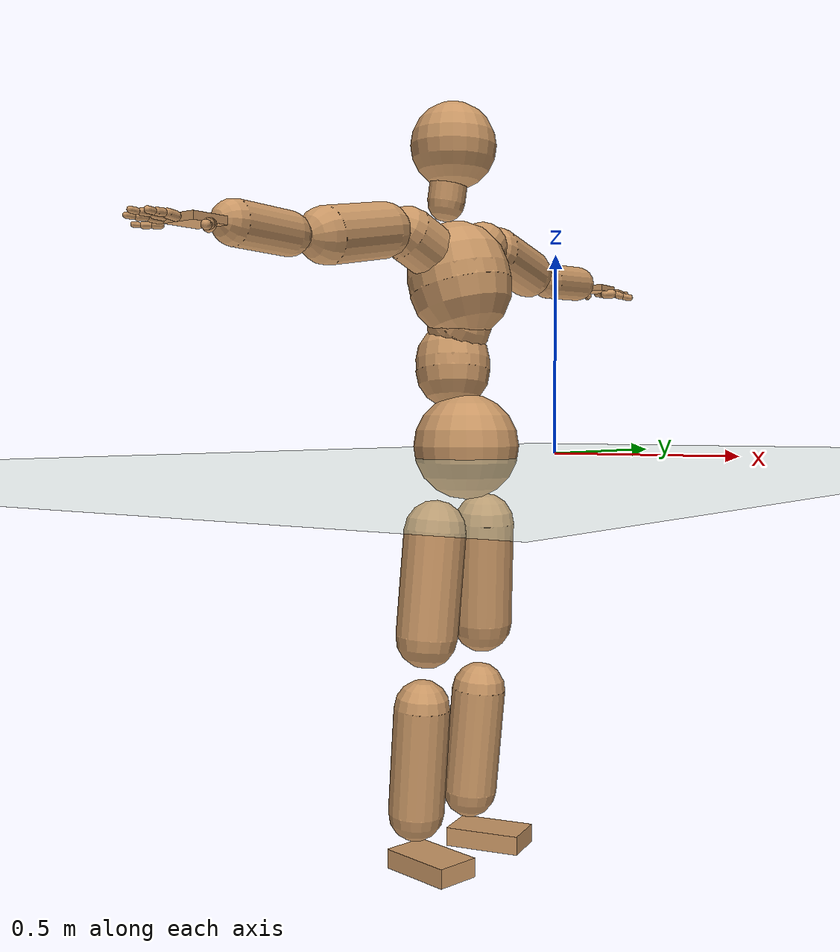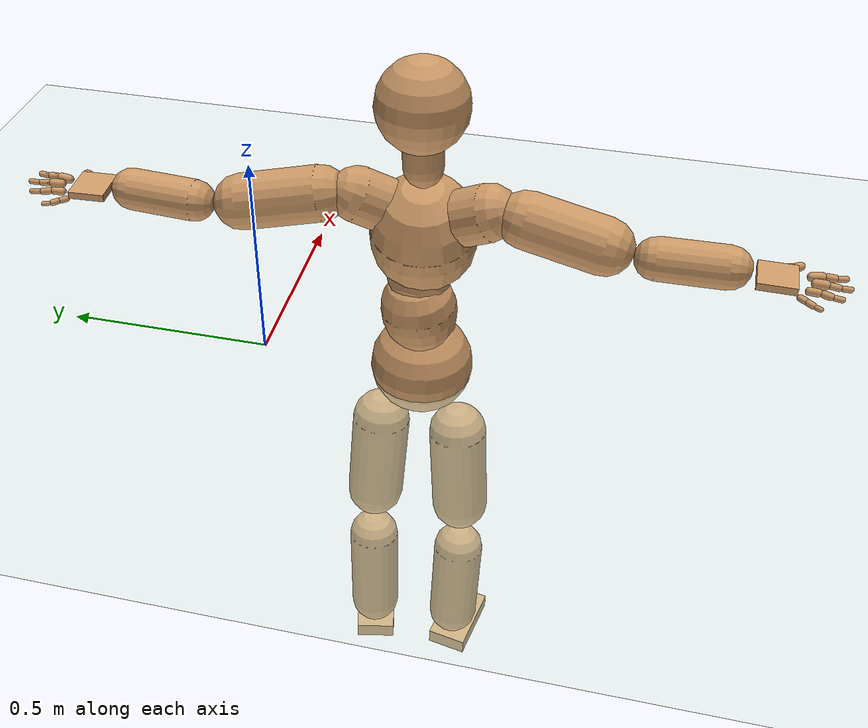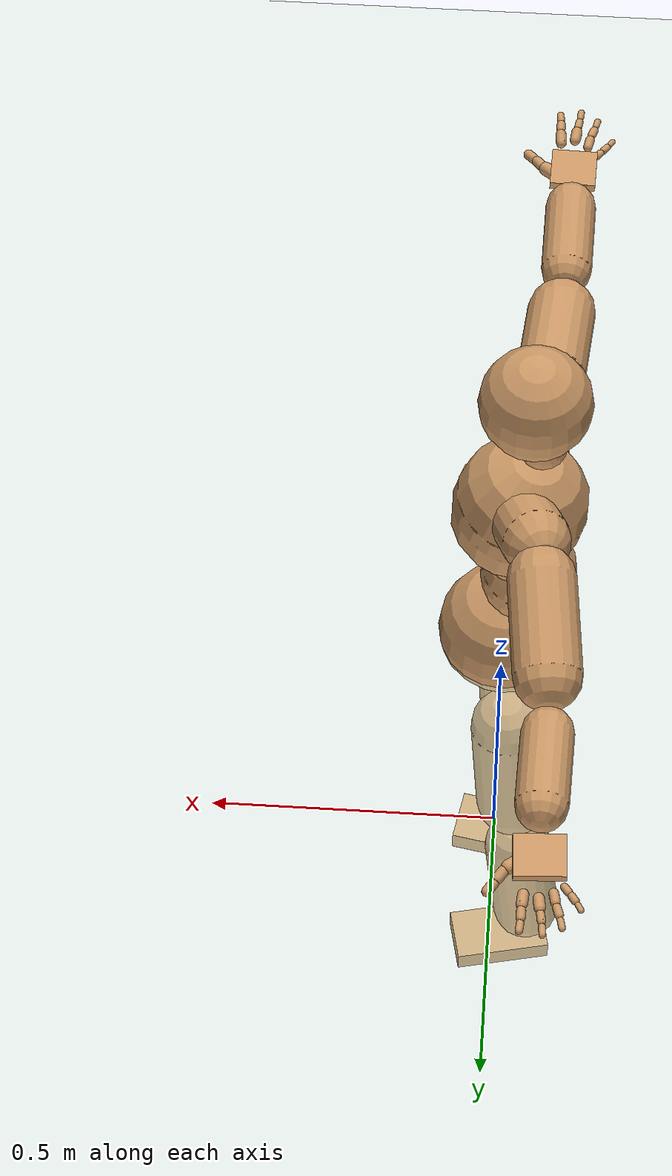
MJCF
<mujoco model="humanoid">
  <compiler coordinate="local" angle="radian"/>
  <default>
    <joint damping="0.0" armature="0.01" stiffness="0.0" limited="true"/>
    <geom conaffinity="1" condim="3" contype="7" margin="0.001" rgba="0.8 0.6 .4 1"/>
  </default>
  <asset>
    <texture type="skybox" builtin="gradient" rgb1=".4 .5 .6" rgb2="0 0 0" width="100" height="100"/>
    <texture builtin="flat" height="1278" mark="cross" markrgb="1 1 1" name="texgeom" random="0.01" rgb1="0.8 0.6 0.4" rgb2="0.8 0.6 0.4" type="cube" width="127"/>
    <texture builtin="checker" height="100" name="texplane" rgb1="0 0 0" rgb2="0.8 0.8 0.8" type="2d" width="100"/>
    <material name="MatPlane" reflectance="0.5" shininess="1" specular="1" texrepeat="60 60" texture="texplane"/>
    <material name="geom" texture="texgeom" texuniform="true"/>
  </asset>
  <worldbody>
    <light cutoff="100" diffuse="1 1 1" dir="-0 0 -1.3" directional="true" exponent="1" pos="0 0 1.3" specular=".1 .1 .1"/>
    <geom conaffinity="1" condim="3" name="floor" pos="0 0 0" rgba="0.8 0.9 0.8 1" size="100 100 .2" type="plane" material="MatPlane"/>
    <body name="Pelvis" pos="0.0009 -0.3911 0.0245">
      <freejoint name="Pelvis"/>
      <geom type="sphere" contype="1" conaffinity="1" density="500" size="0.1206" pos="0.0000 0.0000 0.0000" name="Pelvis"/>
      <body name="L_Hip" pos="-0.0115 0.0913 -0.1022">
        <joint name="L_Hip_x" type="hinge" pos="0 0 0" axis="1 0 0" stiffness="800" damping="80" armature="0.02" range="-180.0000 180.0000"/>
        <joint name="L_Hip_y" type="hinge" pos="0 0 0" axis="0 1 0" stiffness="800" damping="80" armature="0.02" range="-180.0000 180.0000"/>
        <joint name="L_Hip_z" type="hinge" pos="0 0 0" axis="0 0 1" stiffness="800" damping="80" armature="0.02" range="-180.0000 180.0000"/>
        <geom type="capsule" contype="1" conaffinity="1" density="500" fromto="-0.0052 0.0046 -0.0803 -0.0209 0.0185 -0.3211" size="0.0702" name="L_Hip"/>
        <body name="L_Knee" pos="-0.0261 0.0232 -0.4014">
          <joint name="L_Knee_x" type="hinge" pos="0 0 0" axis="1 0 0" stiffness="800" damping="80" armature="0.02" range="-180.0000 180.0000"/>
          <joint name="L_Knee_y" type="hinge" pos="0 0 0" axis="0 1 0" stiffness="800" damping="80" armature="0.02" range="-180.0000 180.0000"/>
          <joint name="L_Knee_z" type="hinge" pos="0 0 0" axis="0 0 1" stiffness="800" damping="80" armature="0.02" range="-180.0000 180.0000"/>
          <geom type="capsule" contype="1" conaffinity="1" density="500" fromto="-0.0073 -0.0021 -0.0830 -0.0291 -0.0083 -0.3321" size="0.0637" name="L_Knee"/>
          <body name="L_Ankle" pos="-0.0364 -0.0104 -0.4151">
            <joint name="L_Ankle_x" type="hinge" pos="0 0 0" axis="1 0 0" stiffness="800" damping="80" armature="0.02" range="-180.0000 180.0000"/>
            <joint name="L_Ankle_y" type="hinge" pos="0 0 0" axis="0 1 0" stiffness="800" damping="80" armature="0.02" range="-180.0000 180.0000"/>
            <joint name="L_Ankle_z" type="hinge" pos="0 0 0" axis="0 0 1" stiffness="800" damping="80" armature="0.02" range="-180.0000 180.0000"/>
            <geom type="box" contype="1" conaffinity="1" density="500" pos="0.0575 0.0125 -0.0217" size="0.0903 0.0509 0.0217" quat="0.9943 0.0000 0.0000 0.1064" name="L_Ankle"/>
            <body name="L_Toe" pos="0.1151 0.0249 -0.0434">
              <joint name="L_Toe_x" type="hinge" pos="0 0 0" axis="1 0 0" stiffness="500" damping="50" armature="0.02" range="-180.0000 180.0000"/>
              <joint name="L_Toe_y" type="hinge" pos="0 0 0" axis="0 1 0" stiffness="500" damping="50" armature="0.02" range="-180.0000 180.0000"/>
              <joint name="L_Toe_z" type="hinge" pos="0 0 0" axis="0 0 1" stiffness="500" damping="50" armature="0.02" range="-180.0000 180.0000"/>
              <geom type="box" contype="1" conaffinity="1" density="500" pos="0.0000 0.0000 0.0216" size="0.001 0.0024 0.0011" quat="0.9936 0.0000 0.0000 0.1128" name="L_Toe"/>
            </body>
          </body>
        </body>
      </body>
      <body name="R_Hip" pos="-0.0126 -0.0913 -0.1086">
        <joint name="R_Hip_x" type="hinge" pos="0 0 0" axis="1 0 0" stiffness="800" damping="80" armature="0.02" range="-180.0000 180.0000"/>
        <joint name="R_Hip_y" type="hinge" pos="0 0 0" axis="0 1 0" stiffness="800" damping="80" armature="0.02" range="-180.0000 180.0000"/>
        <joint name="R_Hip_z" type="hinge" pos="0 0 0" axis="0 0 1" stiffness="800" damping="80" armature="0.02" range="-180.0000 180.0000"/>
        <geom type="capsule" contype="1" conaffinity="1" density="500" fromto="-0.0038 -0.0055 -0.0795 -0.0153 -0.0220 -0.3180" size="0.07" name="R_Hip"/>
        <body name="R_Knee" pos="-0.0192 -0.0275 -0.3975">
          <joint name="R_Knee_x" type="hinge" pos="0 0 0" axis="1 0 0" stiffness="800" damping="80" armature="0.02" range="-180.0000 180.0000"/>
          <joint name="R_Knee_y" type="hinge" pos="0 0 0" axis="0 1 0" stiffness="800" damping="80" armature="0.02" range="-180.0000 180.0000"/>
          <joint name="R_Knee_z" type="hinge" pos="0 0 0" axis="0 0 1" stiffness="800" damping="80" armature="0.02" range="-180.0000 180.0000"/>
          <geom type="capsule" contype="1" conaffinity="1" density="500" fromto="-0.0067 0.0010 -0.0812 -0.0268 0.0041 -0.3247" size="0.0637" name="R_Knee"/>
          <body name="R_Ankle" pos="-0.0334 0.0051 -0.4059">
            <joint name="R_Ankle_x" type="hinge" pos="0 0 0" axis="1 0 0" stiffness="800" damping="80" armature="0.02" range="-180.0000 180.0000"/>
            <joint name="R_Ankle_y" type="hinge" pos="0 0 0" axis="0 1 0" stiffness="800" damping="80" armature="0.02" range="-180.0000 180.0000"/>
            <joint name="R_Ankle_z" type="hinge" pos="0 0 0" axis="0 0 1" stiffness="800" damping="80" armature="0.02" range="-180.0000 180.0000"/>
            <geom type="box" contype="1" conaffinity="1" density="500" pos="0.0546 -0.0101 -0.0233" size="0.0903 0.0509 0.0217" quat="0.9958 0.0000 0.0000 -0.0918" name="R_Ankle"/>
            <body name="R_Toe" pos="0.1091 -0.0203 -0.0466">
              <joint name="R_Toe_x" type="hinge" pos="0 0 0" axis="1 0 0" stiffness="500" damping="50" armature="0.02" range="-180.0000 180.0000"/>
              <joint name="R_Toe_y" type="hinge" pos="0 0 0" axis="0 1 0" stiffness="500" damping="50" armature="0.02" range="-180.0000 180.0000"/>
              <joint name="R_Toe_z" type="hinge" pos="0 0 0" axis="0 0 1" stiffness="500" damping="50" armature="0.02" range="-180.0000 180.0000"/>
              <geom type="box" contype="1" conaffinity="1" density="500" pos="0.0000 0.0000 0.0232" size="0.001 0.0024 0.0011" quat="0.9967 0.0000 0.0000 -0.0815" name="R_Toe"/>
            </body>
          </body>
        </body>
      </body>
      <body name="Torso" pos="-0.0316 -0.0068 0.1215">
        <joint name="Torso_x" type="hinge" pos="0 0 0" axis="1 0 0" stiffness="1000" damping="100" armature="0.02" range="-180.0000 180.0000"/>
        <joint name="Torso_y" type="hinge" pos="0 0 0" axis="0 1 0" stiffness="1000" damping="100" armature="0.02" range="-180.0000 180.0000"/>
        <joint name="Torso_z" type="hinge" pos="0 0 0" axis="0 0 1" stiffness="1000" damping="100" armature="0.02" range="-180.0000 180.0000"/>
        <geom type="capsule" contype="1" conaffinity="1" density="500" fromto="-0.0079 0.0090 0.0761 -0.0053 0.0060 0.0507" size="0.0854" name="Torso"/>
        <body name="Spine" pos="-0.0131 0.015 0.1268">
          <joint name="Spine_x" type="hinge" pos="0 0 0" axis="1 0 0" stiffness="1000" damping="100" armature="0.02" range="-180.0000 180.0000"/>
          <joint name="Spine_y" type="hinge" pos="0 0 0" axis="0 1 0" stiffness="1000" damping="100" armature="0.02" range="-180.0000 180.0000"/>
          <joint name="Spine_z" type="hinge" pos="0 0 0" axis="0 0 1" stiffness="1000" damping="100" armature="0.02" range="-180.0000 180.0000"/>
          <geom type="capsule" contype="1" conaffinity="1" density="500" fromto="0.0281 -0.0054 0.0286 0.0188 -0.0036 0.0191" size="0.0712" name="Spine"/>
          <body name="Chest" pos="0.0469 -0.009 0.0477">
            <joint name="Chest_x" type="hinge" pos="0 0 0" axis="1 0 0" stiffness="1000" damping="100" armature="0.02" range="-180.0000 180.0000"/>
            <joint name="Chest_y" type="hinge" pos="0 0 0" axis="0 1 0" stiffness="1000" damping="100" armature="0.02" range="-180.0000 180.0000"/>
            <joint name="Chest_z" type="hinge" pos="0 0 0" axis="0 0 1" stiffness="1000" damping="100" armature="0.02" range="-180.0000 180.0000"/>
            <geom type="capsule" contype="1" conaffinity="1" density="500" fromto="-0.0232 -0.0019 0.0978 -0.0155 -0.0012 0.0652" size="0.1177" name="Chest"/>
            <body name="Neck" pos="-0.0579 -0.0066 0.2282">
              <joint name="Neck_x" type="hinge" pos="0 0 0" axis="1 0 0" stiffness="500" damping="50" armature="0.02" range="-180.0000 180.0000"/>
              <joint name="Neck_y" type="hinge" pos="0 0 0" axis="0 1 0" stiffness="500" damping="50" armature="0.02" range="-180.0000 180.0000"/>
              <joint name="Neck_z" type="hinge" pos="0 0 0" axis="0 0 1" stiffness="500" damping="50" armature="0.02" range="-180.0000 180.0000"/>
              <geom type="capsule" contype="1" conaffinity="1" density="500" fromto="0.0040 0.0019 0.0317 0.0159 0.0075 0.1269" size="0.043" name="Neck"/>
              <body name="Head" pos="0.0198 0.0093 0.1587">
                <joint name="Head_x" type="hinge" pos="0 0 0" axis="1 0 0" stiffness="500" damping="50" armature="0.02" range="-180.0000 180.0000"/>
                <joint name="Head_y" type="hinge" pos="0 0 0" axis="0 1 0" stiffness="500" damping="50" armature="0.02" range="-180.0000 180.0000"/>
                <joint name="Head_z" type="hinge" pos="0 0 0" axis="0 0 1" stiffness="500" damping="50" armature="0.02" range="-180.0000 180.0000"/>
                <geom type="sphere" contype="1" conaffinity="1" density="500" size="0.0980" pos="0.0000 0.0000 0.0000" name="Head"/>
              </body>
            </body>
            <body name="L_Thorax" pos="-0.0252 0.0587 0.133">
              <joint name="L_Thorax_x" type="hinge" pos="0 0 0" axis="1 0 0" stiffness="500" damping="50" armature="0.02" range="-180.0000 180.0000"/>
              <joint name="L_Thorax_y" type="hinge" pos="0 0 0" axis="0 1 0" stiffness="500" damping="50" armature="0.02" range="-180.0000 180.0000"/>
              <joint name="L_Thorax_z" type="hinge" pos="0 0 0" axis="0 0 1" stiffness="500" damping="50" armature="0.02" range="-180.0000 180.0000"/>
              <geom type="capsule" contype="1" conaffinity="1" density="500" fromto="-0.0065 0.0192 0.0103 -0.0259 0.0768 0.0413" size="0.0601" name="L_Thorax"/>
              <body name="L_Shoulder" pos="-0.0324 0.096 0.0516">
                <joint name="L_Shoulder_x" type="hinge" pos="0 0 0" axis="1 0 0" stiffness="500" damping="50" armature="0.02" range="-180.0000 180.0000"/>
                <joint name="L_Shoulder_y" type="hinge" pos="0 0 0" axis="0 1 0" stiffness="500" damping="50" armature="0.02" range="-180.0000 180.0000"/>
                <joint name="L_Shoulder_z" type="hinge" pos="0 0 0" axis="0 0 1" stiffness="500" damping="50" armature="0.02" range="-180.0000 180.0000"/>
                <geom type="capsule" contype="1" conaffinity="1" density="500" fromto="-0.0059 0.0572 -0.0114 -0.0238 0.2287 -0.0457" size="0.0602" name="L_Shoulder"/>
                <body name="L_Elbow" pos="-0.0297 0.2859 -0.0571">
                  <joint name="L_Elbow_x" type="hinge" pos="0 0 0" axis="1 0 0" stiffness="500" damping="50" armature="0.02" range="-720.0000 720.0000"/>
                  <joint name="L_Elbow_y" type="hinge" pos="0 0 0" axis="0 1 0" stiffness="500" damping="50" armature="0.02" range="-720.0000 720.0000"/>
                  <joint name="L_Elbow_z" type="hinge" pos="0 0 0" axis="0 0 1" stiffness="500" damping="50" armature="0.02" range="-720.0000 720.0000"/>
                  <geom type="capsule" contype="1" conaffinity="1" density="500" fromto="0.0013 0.0478 0.0019 0.0051 0.1912 0.0075" size="0.0452" name="L_Elbow"/>
                  <body name="L_Wrist" pos="0.0064 0.239 0.0094">
                    <joint name="L_Wrist_x" type="hinge" pos="0 0 0" axis="1 0 0" stiffness="300" damping="30" armature="0.02" range="-180.0000 180.0000"/>
                    <joint name="L_Wrist_y" type="hinge" pos="0 0 0" axis="0 1 0" stiffness="300" damping="30" armature="0.02" range="-180.0000 180.0000"/>
                    <joint name="L_Wrist_z" type="hinge" pos="0 0 0" axis="0 0 1" stiffness="300" damping="30" armature="0.02" range="-180.0000 180.0000"/>
                    <geom type="box" contype="1" conaffinity="1" density="500" pos="-0.0021 0.0458 -0.0085" size="0.0399 0.0441 0.0078" quat="0.7234 0.0000 0.0000 -0.6904" name="L_Wrist"/>
                    <body name="L_Index1" pos="0.0212 0.1075 -0.0144">
                      <joint name="L_Index1_x" type="hinge" pos="0 0 0" axis="1 0 0" stiffness="100" damping="10" armature="0.02" range="-180.0000 180.0000"/>
                      <joint name="L_Index1_y" type="hinge" pos="0 0 0" axis="0 1 0" stiffness="100" damping="10" armature="0.02" range="-180.0000 180.0000"/>
                      <joint name="L_Index1_z" type="hinge" pos="0 0 0" axis="0 0 1" stiffness="100" damping="10" armature="0.02" range="-180.0000 180.0000"/>
                      <geom type="capsule" contype="1" conaffinity="1" density="500" fromto="0.0005 0.0064 0.0007 0.0020 0.0257 0.0026" size="0.0095" name="L_Index1"/>
                      <body name="L_Index2" pos="0.0025 0.0321 0.0033">
                        <joint name="L_Index2_x" type="hinge" pos="0 0 0" axis="1 0 0" stiffness="100" damping="10" armature="0.02" range="-180.0000 180.0000"/>
                        <joint name="L_Index2_y" type="hinge" pos="0 0 0" axis="0 1 0" stiffness="100" damping="10" armature="0.02" range="-180.0000 180.0000"/>
                        <joint name="L_Index2_z" type="hinge" pos="0 0 0" axis="0 0 1" stiffness="100" damping="10" armature="0.02" range="-180.0000 180.0000"/>
                        <geom type="capsule" contype="1" conaffinity="1" density="500" fromto="0.0000 0.0045 -0.0003 0.0002 0.0181 -0.0010" size="0.0078" name="L_Index2"/>
                        <body name="L_Index3" pos="0.0002 0.0226 -0.0013">
                          <joint name="L_Index3_x" type="hinge" pos="0 0 0" axis="1 0 0" stiffness="100" damping="10" armature="0.02" range="-180.0000 180.0000"/>
                          <joint name="L_Index3_y" type="hinge" pos="0 0 0" axis="0 1 0" stiffness="100" damping="10" armature="0.02" range="-180.0000 180.0000"/>
                          <joint name="L_Index3_z" type="hinge" pos="0 0 0" axis="0 0 1" stiffness="100" damping="10" armature="0.02" range="-180.0000 180.0000"/>
                          <geom type="capsule" contype="1" conaffinity="1" density="500" fromto="0.0004 0.0049 0.0001 0.0018 0.0197 0.0006" size="0.0064" name="L_Index3"/>
                        </body>
                      </body>
                    </body>
                    <body name="L_Middle1" pos="-0.0027 0.1147 -0.0116">
                      <joint name="L_Middle1_x" type="hinge" pos="0 0 0" axis="1 0 0" stiffness="100" damping="10" armature="0.02" range="-180.0000 180.0000"/>
                      <joint name="L_Middle1_y" type="hinge" pos="0 0 0" axis="0 1 0" stiffness="100" damping="10" armature="0.02" range="-180.0000 180.0000"/>
                      <joint name="L_Middle1_z" type="hinge" pos="0 0 0" axis="0 0 1" stiffness="100" damping="10" armature="0.02" range="-180.0000 180.0000"/>
                      <geom type="capsule" contype="1" conaffinity="1" density="500" fromto="-0.0008 0.0060 0.0004 -0.0032 0.0241 0.0015" size="0.0097" name="L_Middle1"/>
                      <body name="L_Middle2" pos="-0.004 0.0302 0.0019">
                        <joint name="L_Middle2_x" type="hinge" pos="0 0 0" axis="1 0 0" stiffness="100" damping="10" armature="0.02" range="-180.0000 180.0000"/>
                        <joint name="L_Middle2_y" type="hinge" pos="0 0 0" axis="0 1 0" stiffness="100" damping="10" armature="0.02" range="-180.0000 180.0000"/>
                        <joint name="L_Middle2_z" type="hinge" pos="0 0 0" axis="0 0 1" stiffness="100" damping="10" armature="0.02" range="-180.0000 180.0000"/>
                        <geom type="capsule" contype="1" conaffinity="1" density="500" fromto="-0.0008 0.0046 -0.0001 -0.0031 0.0186 -0.0005" size="0.007" name="L_Middle2"/>
                        <body name="L_Middle3" pos="-0.0039 0.0232 -0.0006">
                          <joint name="L_Middle3_x" type="hinge" pos="0 0 0" axis="1 0 0" stiffness="100" damping="10" armature="0.02" range="-180.0000 180.0000"/>
                          <joint name="L_Middle3_y" type="hinge" pos="0 0 0" axis="0 1 0" stiffness="100" damping="10" armature="0.02" range="-180.0000 180.0000"/>
                          <joint name="L_Middle3_z" type="hinge" pos="0 0 0" axis="0 0 1" stiffness="100" damping="10" armature="0.02" range="-180.0000 180.0000"/>
                          <geom type="capsule" contype="1" conaffinity="1" density="500" fromto="-0.0004 0.0050 0.0003 -0.0015 0.0202 0.0011" size="0.0059" name="L_Middle3"/>
                        </body>
                      </body>
                    </body>
                    <body name="L_Pinky1" pos="-0.042 0.0888 -0.0209">
                      <joint name="L_Pinky1_x" type="hinge" pos="0 0 0" axis="1 0 0" stiffness="100" damping="10" armature="0.02" range="-180.0000 180.0000"/>
                      <joint name="L_Pinky1_y" type="hinge" pos="0 0 0" axis="0 1 0" stiffness="100" damping="10" armature="0.02" range="-180.0000 180.0000"/>
                      <joint name="L_Pinky1_z" type="hinge" pos="0 0 0" axis="0 0 1" stiffness="100" damping="10" armature="0.02" range="-180.0000 180.0000"/>
                      <geom type="capsule" contype="1" conaffinity="1" density="500" fromto="-0.0024 0.0030 -0.0001 -0.0095 0.0120 -0.0004" size="0.0068" name="L_Pinky1"/>
                      <body name="L_Pinky2" pos="-0.0119 0.015 -0.0006">
                        <joint name="L_Pinky2_x" type="hinge" pos="0 0 0" axis="1 0 0" stiffness="100" damping="10" armature="0.02" range="-180.0000 180.0000"/>
                        <joint name="L_Pinky2_y" type="hinge" pos="0 0 0" axis="0 1 0" stiffness="100" damping="10" armature="0.02" range="-180.0000 180.0000"/>
                        <joint name="L_Pinky2_z" type="hinge" pos="0 0 0" axis="0 0 1" stiffness="100" damping="10" armature="0.02" range="-180.0000 180.0000"/>
                        <geom type="capsule" contype="1" conaffinity="1" density="500" fromto="-0.0023 0.0030 -0.0002 -0.0091 0.0121 -0.0009" size="0.0066" name="L_Pinky2"/>
                        <body name="L_Pinky3" pos="-0.0114 0.0152 -0.0011">
                          <joint name="L_Pinky3_x" type="hinge" pos="0 0 0" axis="1 0 0" stiffness="100" damping="10" armature="0.02" range="-180.0000 180.0000"/>
                          <joint name="L_Pinky3_y" type="hinge" pos="0 0 0" axis="0 1 0" stiffness="100" damping="10" armature="0.02" range="-180.0000 180.0000"/>
                          <joint name="L_Pinky3_z" type="hinge" pos="0 0 0" axis="0 0 1" stiffness="100" damping="10" armature="0.02" range="-180.0000 180.0000"/>
                          <geom type="capsule" contype="1" conaffinity="1" density="500" fromto="-0.0019 0.0034 0.0002 -0.0075 0.0137 0.0007" size="0.005" name="L_Pinky3"/>
                        </body>
                      </body>
                    </body>
                    <body name="L_Ring1" pos="-0.0263 0.1024 -0.015">
                      <joint name="L_Ring1_x" type="hinge" pos="0 0 0" axis="1 0 0" stiffness="100" damping="10" armature="0.02" range="-180.0000 180.0000"/>
                      <joint name="L_Ring1_y" type="hinge" pos="0 0 0" axis="0 1 0" stiffness="100" damping="10" armature="0.02" range="-180.0000 180.0000"/>
                      <joint name="L_Ring1_z" type="hinge" pos="0 0 0" axis="0 0 1" stiffness="100" damping="10" armature="0.02" range="-180.0000 180.0000"/>
                      <geom type="capsule" contype="1" conaffinity="1" density="500" fromto="-0.0011 0.0055 0.0004 -0.0044 0.0222 0.0016" size="0.0083" name="L_Ring1"/>
                      <body name="L_Ring2" pos="-0.0056 0.0277 0.002">
                        <joint name="L_Ring2_x" type="hinge" pos="0 0 0" axis="1 0 0" stiffness="100" damping="10" armature="0.02" range="-180.0000 180.0000"/>
                        <joint name="L_Ring2_y" type="hinge" pos="0 0 0" axis="0 1 0" stiffness="100" damping="10" armature="0.02" range="-180.0000 180.0000"/>
                        <joint name="L_Ring2_z" type="hinge" pos="0 0 0" axis="0 0 1" stiffness="100" damping="10" armature="0.02" range="-180.0000 180.0000"/>
                        <geom type="capsule" contype="1" conaffinity="1" density="500" fromto="-0.0014 0.0045 -0.0002 -0.0058 0.0180 -0.0009" size="0.0075" name="L_Ring2"/>
                        <body name="L_Ring3" pos="-0.0072 0.0225 -0.0012">
                          <joint name="L_Ring3_x" type="hinge" pos="0 0 0" axis="1 0 0" stiffness="100" damping="10" armature="0.02" range="-180.0000 180.0000"/>
                          <joint name="L_Ring3_y" type="hinge" pos="0 0 0" axis="0 1 0" stiffness="100" damping="10" armature="0.02" range="-180.0000 180.0000"/>
                          <joint name="L_Ring3_z" type="hinge" pos="0 0 0" axis="0 0 1" stiffness="100" damping="10" armature="0.02" range="-180.0000 180.0000"/>
                          <geom type="capsule" contype="1" conaffinity="1" density="500" fromto="-0.0010 0.0049 0.0002 -0.0042 0.0196 0.0007" size="0.0057" name="L_Ring3"/>
                        </body>
                      </body>
                    </body>
                    <body name="L_Thumb1" pos="0.0284 0.0448 -0.0235">
                      <joint name="L_Thumb1_x" type="hinge" pos="0 0 0" axis="1 0 0" stiffness="100" damping="10" armature="0.02" range="-180.0000 180.0000"/>
                      <joint name="L_Thumb1_y" type="hinge" pos="0 0 0" axis="0 1 0" stiffness="100" damping="10" armature="0.02" range="-180.0000 180.0000"/>
                      <joint name="L_Thumb1_z" type="hinge" pos="0 0 0" axis="0 0 1" stiffness="100" damping="10" armature="0.02" range="-180.0000 180.0000"/>
                      <geom type="capsule" contype="1" conaffinity="1" density="500" fromto="0.0049 0.0035 0.0002 0.0195 0.0140 0.0007" size="0.0123" name="L_Thumb1"/>
                      <body name="L_Thumb2" pos="0.0243 0.0175 0.0008">
                        <joint name="L_Thumb2_x" type="hinge" pos="0 0 0" axis="1 0 0" stiffness="100" damping="10" armature="0.02" range="-180.0000 180.0000"/>
                        <joint name="L_Thumb2_y" type="hinge" pos="0 0 0" axis="0 1 0" stiffness="100" damping="10" armature="0.02" range="-180.0000 180.0000"/>
                        <joint name="L_Thumb2_z" type="hinge" pos="0 0 0" axis="0 0 1" stiffness="100" damping="10" armature="0.02" range="-180.0000 180.0000"/>
                        <geom type="capsule" contype="1" conaffinity="1" density="500" fromto="0.0029 0.0042 -0.0012 0.0117 0.0166 -0.0048" size="0.0097" name="L_Thumb2"/>
                        <body name="L_Thumb3" pos="0.0146 0.0208 -0.006">
                          <joint name="L_Thumb3_x" type="hinge" pos="0 0 0" axis="1 0 0" stiffness="100" damping="10" armature="0.02" range="-180.0000 180.0000"/>
                          <joint name="L_Thumb3_y" type="hinge" pos="0 0 0" axis="0 1 0" stiffness="100" damping="10" armature="0.02" range="-180.0000 180.0000"/>
                          <joint name="L_Thumb3_z" type="hinge" pos="0 0 0" axis="0 0 1" stiffness="100" damping="10" armature="0.02" range="-180.0000 180.0000"/>
                          <geom type="capsule" contype="1" conaffinity="1" density="500" fromto="0.0033 0.0046 -0.0008 0.0133 0.0182 -0.0032" size="0.009" name="L_Thumb3"/>
                        </body>
                      </body>
                    </body>
                  </body>
                </body>
              </body>
            </body>
            <body name="R_Thorax" pos="-0.033 -0.0614 0.128">
              <joint name="R_Thorax_x" type="hinge" pos="0 0 0" axis="1 0 0" stiffness="500" damping="50" armature="0.02" range="-180.0000 180.0000"/>
              <joint name="R_Thorax_y" type="hinge" pos="0 0 0" axis="0 1 0" stiffness="500" damping="50" armature="0.02" range="-180.0000 180.0000"/>
              <joint name="R_Thorax_z" type="hinge" pos="0 0 0" axis="0 0 1" stiffness="500" damping="50" armature="0.02" range="-180.0000 180.0000"/>
              <geom type="capsule" contype="1" conaffinity="1" density="500" fromto="-0.0048 -0.0209 0.0107 -0.0191 -0.0837 0.0427" size="0.0613" name="R_Thorax"/>
              <body name="R_Shoulder" pos="-0.0238 -0.1046 0.0533">
                <joint name="R_Shoulder_x" type="hinge" pos="0 0 0" axis="1 0 0" stiffness="500" damping="50" armature="0.02" range="-180.0000 180.0000"/>
                <joint name="R_Shoulder_y" type="hinge" pos="0 0 0" axis="0 1 0" stiffness="500" damping="50" armature="0.02" range="-180.0000 180.0000"/>
                <joint name="R_Shoulder_z" type="hinge" pos="0 0 0" axis="0 0 1" stiffness="500" damping="50" armature="0.02" range="-180.0000 180.0000"/>
                <geom type="capsule" contype="1" conaffinity="1" density="500" fromto="-0.0045 -0.0552 -0.0101 -0.0178 -0.2210 -0.0405" size="0.0607" name="R_Shoulder"/>
                <body name="R_Elbow" pos="-0.0223 -0.2762 -0.0506">
                  <joint name="R_Elbow_x" type="hinge" pos="0 0 0" axis="1 0 0" stiffness="500" damping="50" armature="0.02" range="-720.0000 720.0000"/>
                  <joint name="R_Elbow_y" type="hinge" pos="0 0 0" axis="0 1 0" stiffness="500" damping="50" armature="0.02" range="-720.0000 720.0000"/>
                  <joint name="R_Elbow_z" type="hinge" pos="0 0 0" axis="0 0 1" stiffness="500" damping="50" armature="0.02" range="-720.0000 720.0000"/>
                  <geom type="capsule" contype="1" conaffinity="1" density="500" fromto="-0.0007 -0.0478 0.0010 -0.0030 -0.1913 0.0042" size="0.0453" name="R_Elbow"/>
                  <body name="R_Wrist" pos="-0.0037 -0.2391 0.0052">
                    <joint name="R_Wrist_x" type="hinge" pos="0 0 0" axis="1 0 0" stiffness="300" damping="30" armature="0.02" range="-180.0000 180.0000"/>
                    <joint name="R_Wrist_y" type="hinge" pos="0 0 0" axis="0 1 0" stiffness="300" damping="30" armature="0.02" range="-180.0000 180.0000"/>
                    <joint name="R_Wrist_z" type="hinge" pos="0 0 0" axis="0 0 1" stiffness="300" damping="30" armature="0.02" range="-180.0000 180.0000"/>
                    <geom type="box" contype="1" conaffinity="1" density="500" pos="-0.0012 -0.0451 -0.0081" size="0.0399 0.0412 0.0081" quat="0.7163 0.0000 0.0000 0.6978" name="R_Wrist"/>
                    <body name="R_Index1" pos="0.0231 -0.1061 -0.0135">
                      <joint name="R_Index1_x" type="hinge" pos="0 0 0" axis="1 0 0" stiffness="100" damping="10" armature="0.02" range="-180.0000 180.0000"/>
                      <joint name="R_Index1_y" type="hinge" pos="0 0 0" axis="0 1 0" stiffness="100" damping="10" armature="0.02" range="-180.0000 180.0000"/>
                      <joint name="R_Index1_z" type="hinge" pos="0 0 0" axis="0 0 1" stiffness="100" damping="10" armature="0.02" range="-180.0000 180.0000"/>
                      <geom type="capsule" contype="1" conaffinity="1" density="500" fromto="0.0005 -0.0064 0.0007 0.0020 -0.0257 0.0026" size="0.0095" name="R_Index1"/>
                      <body name="R_Index2" pos="0.0025 -0.0321 0.0033">
                        <joint name="R_Index2_x" type="hinge" pos="0 0 0" axis="1 0 0" stiffness="100" damping="10" armature="0.02" range="-180.0000 180.0000"/>
                        <joint name="R_Index2_y" type="hinge" pos="0 0 0" axis="0 1 0" stiffness="100" damping="10" armature="0.02" range="-180.0000 180.0000"/>
                        <joint name="R_Index2_z" type="hinge" pos="0 0 0" axis="0 0 1" stiffness="100" damping="10" armature="0.02" range="-180.0000 180.0000"/>
                        <geom type="capsule" contype="1" conaffinity="1" density="500" fromto="0.0000 -0.0045 -0.0003 0.0002 -0.0181 -0.0010" size="0.0078" name="R_Index2"/>
                        <body name="R_Index3" pos="0.0002 -0.0226 -0.0013">
                          <joint name="R_Index3_x" type="hinge" pos="0 0 0" axis="1 0 0" stiffness="100" damping="10" armature="0.02" range="-180.0000 180.0000"/>
                          <joint name="R_Index3_y" type="hinge" pos="0 0 0" axis="0 1 0" stiffness="100" damping="10" armature="0.02" range="-180.0000 180.0000"/>
                          <joint name="R_Index3_z" type="hinge" pos="0 0 0" axis="0 0 1" stiffness="100" damping="10" armature="0.02" range="-180.0000 180.0000"/>
                          <geom type="capsule" contype="1" conaffinity="1" density="500" fromto="0.0004 -0.0041 0.0001 0.0018 -0.0165 0.0006" size="0.0067" name="R_Index3"/>
                        </body>
                      </body>
                    </body>
                    <body name="R_Middle1" pos="-0.0008 -0.1133 -0.0106">
                      <joint name="R_Middle1_x" type="hinge" pos="0 0 0" axis="1 0 0" stiffness="100" damping="10" armature="0.02" range="-180.0000 180.0000"/>
                      <joint name="R_Middle1_y" type="hinge" pos="0 0 0" axis="0 1 0" stiffness="100" damping="10" armature="0.02" range="-180.0000 180.0000"/>
                      <joint name="R_Middle1_z" type="hinge" pos="0 0 0" axis="0 0 1" stiffness="100" damping="10" armature="0.02" range="-180.0000 180.0000"/>
                      <geom type="capsule" contype="1" conaffinity="1" density="500" fromto="-0.0008 -0.0060 0.0004 -0.0032 -0.0241 0.0015" size="0.0097" name="R_Middle1"/>
                      <body name="R_Middle2" pos="-0.004 -0.0302 0.0019">
                        <joint name="R_Middle2_x" type="hinge" pos="0 0 0" axis="1 0 0" stiffness="100" damping="10" armature="0.02" range="-180.0000 180.0000"/>
                        <joint name="R_Middle2_y" type="hinge" pos="0 0 0" axis="0 1 0" stiffness="100" damping="10" armature="0.02" range="-180.0000 180.0000"/>
                        <joint name="R_Middle2_z" type="hinge" pos="0 0 0" axis="0 0 1" stiffness="100" damping="10" armature="0.02" range="-180.0000 180.0000"/>
                        <geom type="capsule" contype="1" conaffinity="1" density="500" fromto="-0.0008 -0.0046 -0.0001 -0.0031 -0.0186 -0.0005" size="0.007" name="R_Middle2"/>
                        <body name="R_Middle3" pos="-0.0039 -0.0232 -0.0006">
                          <joint name="R_Middle3_x" type="hinge" pos="0 0 0" axis="1 0 0" stiffness="100" damping="10" armature="0.02" range="-180.0000 180.0000"/>
                          <joint name="R_Middle3_y" type="hinge" pos="0 0 0" axis="0 1 0" stiffness="100" damping="10" armature="0.02" range="-180.0000 180.0000"/>
                          <joint name="R_Middle3_z" type="hinge" pos="0 0 0" axis="0 0 1" stiffness="100" damping="10" armature="0.02" range="-180.0000 180.0000"/>
                          <geom type="capsule" contype="1" conaffinity="1" density="500" fromto="-0.0004 -0.0042 0.0003 -0.0015 -0.0170 0.0011" size="0.0062" name="R_Middle3"/>
                        </body>
                      </body>
                    </body>
                    <body name="R_Pinky1" pos="-0.0401 -0.0874 -0.02">
                      <joint name="R_Pinky1_x" type="hinge" pos="0 0 0" axis="1 0 0" stiffness="100" damping="10" armature="0.02" range="-180.0000 180.0000"/>
                      <joint name="R_Pinky1_y" type="hinge" pos="0 0 0" axis="0 1 0" stiffness="100" damping="10" armature="0.02" range="-180.0000 180.0000"/>
                      <joint name="R_Pinky1_z" type="hinge" pos="0 0 0" axis="0 0 1" stiffness="100" damping="10" armature="0.02" range="-180.0000 180.0000"/>
                      <geom type="capsule" contype="1" conaffinity="1" density="500" fromto="-0.0024 -0.0030 -0.0001 -0.0095 -0.0120 -0.0004" size="0.0068" name="R_Pinky1"/>
                      <body name="R_Pinky2" pos="-0.0119 -0.015 -0.0006">
                        <joint name="R_Pinky2_x" type="hinge" pos="0 0 0" axis="1 0 0" stiffness="100" damping="10" armature="0.02" range="-180.0000 180.0000"/>
                        <joint name="R_Pinky2_y" type="hinge" pos="0 0 0" axis="0 1 0" stiffness="100" damping="10" armature="0.02" range="-180.0000 180.0000"/>
                        <joint name="R_Pinky2_z" type="hinge" pos="0 0 0" axis="0 0 1" stiffness="100" damping="10" armature="0.02" range="-180.0000 180.0000"/>
                        <geom type="capsule" contype="1" conaffinity="1" density="500" fromto="-0.0023 -0.0030 -0.0002 -0.0091 -0.0121 -0.0009" size="0.0066" name="R_Pinky2"/>
                        <body name="R_Pinky3" pos="-0.0114 -0.0152 -0.0011">
                          <joint name="R_Pinky3_x" type="hinge" pos="0 0 0" axis="1 0 0" stiffness="100" damping="10" armature="0.02" range="-180.0000 180.0000"/>
                          <joint name="R_Pinky3_y" type="hinge" pos="0 0 0" axis="0 1 0" stiffness="100" damping="10" armature="0.02" range="-180.0000 180.0000"/>
                          <joint name="R_Pinky3_z" type="hinge" pos="0 0 0" axis="0 0 1" stiffness="100" damping="10" armature="0.02" range="-180.0000 180.0000"/>
                          <geom type="capsule" contype="1" conaffinity="1" density="500" fromto="-0.0019 -0.0026 0.0002 -0.0075 -0.0105 0.0007" size="0.0052" name="R_Pinky3"/>
                        </body>
                      </body>
                    </body>
                    <body name="R_Ring1" pos="-0.0244 -0.101 -0.0141">
                      <joint name="R_Ring1_x" type="hinge" pos="0 0 0" axis="1 0 0" stiffness="100" damping="10" armature="0.02" range="-180.0000 180.0000"/>
                      <joint name="R_Ring1_y" type="hinge" pos="0 0 0" axis="0 1 0" stiffness="100" damping="10" armature="0.02" range="-180.0000 180.0000"/>
                      <joint name="R_Ring1_z" type="hinge" pos="0 0 0" axis="0 0 1" stiffness="100" damping="10" armature="0.02" range="-180.0000 180.0000"/>
                      <geom type="capsule" contype="1" conaffinity="1" density="500" fromto="-0.0011 -0.0055 0.0004 -0.0044 -0.0222 0.0016" size="0.0083" name="R_Ring1"/>
                      <body name="R_Ring2" pos="-0.0056 -0.0277 0.002">
                        <joint name="R_Ring2_x" type="hinge" pos="0 0 0" axis="1 0 0" stiffness="100" damping="10" armature="0.02" range="-180.0000 180.0000"/>
                        <joint name="R_Ring2_y" type="hinge" pos="0 0 0" axis="0 1 0" stiffness="100" damping="10" armature="0.02" range="-180.0000 180.0000"/>
                        <joint name="R_Ring2_z" type="hinge" pos="0 0 0" axis="0 0 1" stiffness="100" damping="10" armature="0.02" range="-180.0000 180.0000"/>
                        <geom type="capsule" contype="1" conaffinity="1" density="500" fromto="-0.0014 -0.0045 -0.0002 -0.0058 -0.0180 -0.0009" size="0.0075" name="R_Ring2"/>
                        <body name="R_Ring3" pos="-0.0072 -0.0225 -0.0012">
                          <joint name="R_Ring3_x" type="hinge" pos="0 0 0" axis="1 0 0" stiffness="100" damping="10" armature="0.02" range="-180.0000 180.0000"/>
                          <joint name="R_Ring3_y" type="hinge" pos="0 0 0" axis="0 1 0" stiffness="100" damping="10" armature="0.02" range="-180.0000 180.0000"/>
                          <joint name="R_Ring3_z" type="hinge" pos="0 0 0" axis="0 0 1" stiffness="100" damping="10" armature="0.02" range="-180.0000 180.0000"/>
                          <geom type="capsule" contype="1" conaffinity="1" density="500" fromto="-0.0010 -0.0041 0.0002 -0.0042 -0.0164 0.0007" size="0.006" name="R_Ring3"/>
                        </body>
                      </body>
                    </body>
                    <body name="R_Thumb1" pos="0.0304 -0.0434 -0.0226">
                      <joint name="R_Thumb1_x" type="hinge" pos="0 0 0" axis="1 0 0" stiffness="100" damping="10" armature="0.02" range="-180.0000 180.0000"/>
                      <joint name="R_Thumb1_y" type="hinge" pos="0 0 0" axis="0 1 0" stiffness="100" damping="10" armature="0.02" range="-180.0000 180.0000"/>
                      <joint name="R_Thumb1_z" type="hinge" pos="0 0 0" axis="0 0 1" stiffness="100" damping="10" armature="0.02" range="-180.0000 180.0000"/>
                      <geom type="capsule" contype="1" conaffinity="1" density="500" fromto="0.0049 -0.0035 0.0002 0.0195 -0.0140 0.0007" size="0.0123" name="R_Thumb1"/>
                      <body name="R_Thumb2" pos="0.0243 -0.0175 0.0008">
                        <joint name="R_Thumb2_x" type="hinge" pos="0 0 0" axis="1 0 0" stiffness="100" damping="10" armature="0.02" range="-180.0000 180.0000"/>
                        <joint name="R_Thumb2_y" type="hinge" pos="0 0 0" axis="0 1 0" stiffness="100" damping="10" armature="0.02" range="-180.0000 180.0000"/>
                        <joint name="R_Thumb2_z" type="hinge" pos="0 0 0" axis="0 0 1" stiffness="100" damping="10" armature="0.02" range="-180.0000 180.0000"/>
                        <geom type="capsule" contype="1" conaffinity="1" density="500" fromto="0.0029 -0.0042 -0.0012 0.0117 -0.0166 -0.0048" size="0.0097" name="R_Thumb2"/>
                        <body name="R_Thumb3" pos="0.0146 -0.0208 -0.006">
                          <joint name="R_Thumb3_x" type="hinge" pos="0 0 0" axis="1 0 0" stiffness="100" damping="10" armature="0.02" range="-180.0000 180.0000"/>
                          <joint name="R_Thumb3_y" type="hinge" pos="0 0 0" axis="0 1 0" stiffness="100" damping="10" armature="0.02" range="-180.0000 180.0000"/>
                          <joint name="R_Thumb3_z" type="hinge" pos="0 0 0" axis="0 0 1" stiffness="100" damping="10" armature="0.02" range="-180.0000 180.0000"/>
                          <geom type="capsule" contype="1" conaffinity="1" density="500" fromto="0.0033 -0.0038 -0.0008 0.0133 -0.0150 -0.0032" size="0.0092" name="R_Thumb3"/>
                        </body>
                      </body>
                    </body>
                  </body>
                </body>
              </body>
            </body>
          </body>
        </body>
      </body>
    </body>
  </worldbody>
  <actuator>
    <motor name="L_Hip_x" joint="L_Hip_x" gear="500"/>
    <motor name="L_Hip_y" joint="L_Hip_y" gear="500"/>
    <motor name="L_Hip_z" joint="L_Hip_z" gear="500"/>
    <motor name="L_Knee_x" joint="L_Knee_x" gear="500"/>
    <motor name="L_Knee_y" joint="L_Knee_y" gear="500"/>
    <motor name="L_Knee_z" joint="L_Knee_z" gear="500"/>
    <motor name="L_Ankle_x" joint="L_Ankle_x" gear="500"/>
    <motor name="L_Ankle_y" joint="L_Ankle_y" gear="500"/>
    <motor name="L_Ankle_z" joint="L_Ankle_z" gear="500"/>
    <motor name="L_Toe_x" joint="L_Toe_x" gear="500"/>
    <motor name="L_Toe_y" joint="L_Toe_y" gear="500"/>
    <motor name="L_Toe_z" joint="L_Toe_z" gear="500"/>
    <motor name="R_Hip_x" joint="R_Hip_x" gear="500"/>
    <motor name="R_Hip_y" joint="R_Hip_y" gear="500"/>
    <motor name="R_Hip_z" joint="R_Hip_z" gear="500"/>
    <motor name="R_Knee_x" joint="R_Knee_x" gear="500"/>
    <motor name="R_Knee_y" joint="R_Knee_y" gear="500"/>
    <motor name="R_Knee_z" joint="R_Knee_z" gear="500"/>
    <motor name="R_Ankle_x" joint="R_Ankle_x" gear="500"/>
    <motor name="R_Ankle_y" joint="R_Ankle_y" gear="500"/>
    <motor name="R_Ankle_z" joint="R_Ankle_z" gear="500"/>
    <motor name="R_Toe_x" joint="R_Toe_x" gear="500"/>
    <motor name="R_Toe_y" joint="R_Toe_y" gear="500"/>
    <motor name="R_Toe_z" joint="R_Toe_z" gear="500"/>
    <motor name="Torso_x" joint="Torso_x" gear="500"/>
    <motor name="Torso_y" joint="Torso_y" gear="500"/>
    <motor name="Torso_z" joint="Torso_z" gear="500"/>
    <motor name="Spine_x" joint="Spine_x" gear="500"/>
    <motor name="Spine_y" joint="Spine_y" gear="500"/>
    <motor name="Spine_z" joint="Spine_z" gear="500"/>
    <motor name="Chest_x" joint="Chest_x" gear="500"/>
    <motor name="Chest_y" joint="Chest_y" gear="500"/>
    <motor name="Chest_z" joint="Chest_z" gear="500"/>
    <motor name="Neck_x" joint="Neck_x" gear="500"/>
    <motor name="Neck_y" joint="Neck_y" gear="500"/>
    <motor name="Neck_z" joint="Neck_z" gear="500"/>
    <motor name="Head_x" joint="Head_x" gear="500"/>
    <motor name="Head_y" joint="Head_y" gear="500"/>
    <motor name="Head_z" joint="Head_z" gear="500"/>
    <motor name="L_Thorax_x" joint="L_Thorax_x" gear="500"/>
    <motor name="L_Thorax_y" joint="L_Thorax_y" gear="500"/>
    <motor name="L_Thorax_z" joint="L_Thorax_z" gear="500"/>
    <motor name="L_Shoulder_x" joint="L_Shoulder_x" gear="500"/>
    <motor name="L_Shoulder_y" joint="L_Shoulder_y" gear="500"/>
    <motor name="L_Shoulder_z" joint="L_Shoulder_z" gear="500"/>
    <motor name="L_Elbow_x" joint="L_Elbow_x" gear="500"/>
    <motor name="L_Elbow_y" joint="L_Elbow_y" gear="500"/>
    <motor name="L_Elbow_z" joint="L_Elbow_z" gear="500"/>
    <motor name="L_Wrist_x" joint="L_Wrist_x" gear="500"/>
    <motor name="L_Wrist_y" joint="L_Wrist_y" gear="500"/>
    <motor name="L_Wrist_z" joint="L_Wrist_z" gear="500"/>
    <motor name="L_Index1_x" joint="L_Index1_x" gear="500"/>
    <motor name="L_Index1_y" joint="L_Index1_y" gear="500"/>
    <motor name="L_Index1_z" joint="L_Index1_z" gear="500"/>
    <motor name="L_Index2_x" joint="L_Index2_x" gear="500"/>
    <motor name="L_Index2_y" joint="L_Index2_y" gear="500"/>
    <motor name="L_Index2_z" joint="L_Index2_z" gear="500"/>
    <motor name="L_Index3_x" joint="L_Index3_x" gear="500"/>
    <motor name="L_Index3_y" joint="L_Index3_y" gear="500"/>
    <motor name="L_Index3_z" joint="L_Index3_z" gear="500"/>
    <motor name="L_Middle1_x" joint="L_Middle1_x" gear="500"/>
    <motor name="L_Middle1_y" joint="L_Middle1_y" gear="500"/>
    <motor name="L_Middle1_z" joint="L_Middle1_z" gear="500"/>
    <motor name="L_Middle2_x" joint="L_Middle2_x" gear="500"/>
    <motor name="L_Middle2_y" joint="L_Middle2_y" gear="500"/>
    <motor name="L_Middle2_z" joint="L_Middle2_z" gear="500"/>
    <motor name="L_Middle3_x" joint="L_Middle3_x" gear="500"/>
    <motor name="L_Middle3_y" joint="L_Middle3_y" gear="500"/>
    <motor name="L_Middle3_z" joint="L_Middle3_z" gear="500"/>
    <motor name="L_Pinky1_x" joint="L_Pinky1_x" gear="500"/>
    <motor name="L_Pinky1_y" joint="L_Pinky1_y" gear="500"/>
    <motor name="L_Pinky1_z" joint="L_Pinky1_z" gear="500"/>
    <motor name="L_Pinky2_x" joint="L_Pinky2_x" gear="500"/>
    <motor name="L_Pinky2_y" joint="L_Pinky2_y" gear="500"/>
    <motor name="L_Pinky2_z" joint="L_Pinky2_z" gear="500"/>
    <motor name="L_Pinky3_x" joint="L_Pinky3_x" gear="500"/>
    <motor name="L_Pinky3_y" joint="L_Pinky3_y" gear="500"/>
    <motor name="L_Pinky3_z" joint="L_Pinky3_z" gear="500"/>
    <motor name="L_Ring1_x" joint="L_Ring1_x" gear="500"/>
    <motor name="L_Ring1_y" joint="L_Ring1_y" gear="500"/>
    <motor name="L_Ring1_z" joint="L_Ring1_z" gear="500"/>
    <motor name="L_Ring2_x" joint="L_Ring2_x" gear="500"/>
    <motor name="L_Ring2_y" joint="L_Ring2_y" gear="500"/>
    <motor name="L_Ring2_z" joint="L_Ring2_z" gear="500"/>
    <motor name="L_Ring3_x" joint="L_Ring3_x" gear="500"/>
    <motor name="L_Ring3_y" joint="L_Ring3_y" gear="500"/>
    <motor name="L_Ring3_z" joint="L_Ring3_z" gear="500"/>
    <motor name="L_Thumb1_x" joint="L_Thumb1_x" gear="500"/>
    <motor name="L_Thumb1_y" joint="L_Thumb1_y" gear="500"/>
    <motor name="L_Thumb1_z" joint="L_Thumb1_z" gear="500"/>
    <motor name="L_Thumb2_x" joint="L_Thumb2_x" gear="500"/>
    <motor name="L_Thumb2_y" joint="L_Thumb2_y" gear="500"/>
    <motor name="L_Thumb2_z" joint="L_Thumb2_z" gear="500"/>
    <motor name="L_Thumb3_x" joint="L_Thumb3_x" gear="500"/>
    <motor name="L_Thumb3_y" joint="L_Thumb3_y" gear="500"/>
    <motor name="L_Thumb3_z" joint="L_Thumb3_z" gear="500"/>
    <motor name="R_Thorax_x" joint="R_Thorax_x" gear="500"/>
    <motor name="R_Thorax_y" joint="R_Thorax_y" gear="500"/>
    <motor name="R_Thorax_z" joint="R_Thorax_z" gear="500"/>
    <motor name="R_Shoulder_x" joint="R_Shoulder_x" gear="500"/>
    <motor name="R_Shoulder_y" joint="R_Shoulder_y" gear="500"/>
    <motor name="R_Shoulder_z" joint="R_Shoulder_z" gear="500"/>
    <motor name="R_Elbow_x" joint="R_Elbow_x" gear="500"/>
    <motor name="R_Elbow_y" joint="R_Elbow_y" gear="500"/>
    <motor name="R_Elbow_z" joint="R_Elbow_z" gear="500"/>
    <motor name="R_Wrist_x" joint="R_Wrist_x" gear="500"/>
    <motor name="R_Wrist_y" joint="R_Wrist_y" gear="500"/>
    <motor name="R_Wrist_z" joint="R_Wrist_z" gear="500"/>
    <motor name="R_Index1_x" joint="R_Index1_x" gear="500"/>
    <motor name="R_Index1_y" joint="R_Index1_y" gear="500"/>
    <motor name="R_Index1_z" joint="R_Index1_z" gear="500"/>
    <motor name="R_Index2_x" joint="R_Index2_x" gear="500"/>
    <motor name="R_Index2_y" joint="R_Index2_y" gear="500"/>
    <motor name="R_Index2_z" joint="R_Index2_z" gear="500"/>
    <motor name="R_Index3_x" joint="R_Index3_x" gear="500"/>
    <motor name="R_Index3_y" joint="R_Index3_y" gear="500"/>
    <motor name="R_Index3_z" joint="R_Index3_z" gear="500"/>
    <motor name="R_Middle1_x" joint="R_Middle1_x" gear="500"/>
    <motor name="R_Middle1_y" joint="R_Middle1_y" gear="500"/>
    <motor name="R_Middle1_z" joint="R_Middle1_z" gear="500"/>
    <motor name="R_Middle2_x" joint="R_Middle2_x" gear="500"/>
    <motor name="R_Middle2_y" joint="R_Middle2_y" gear="500"/>
    <motor name="R_Middle2_z" joint="R_Middle2_z" gear="500"/>
    <motor name="R_Middle3_x" joint="R_Middle3_x" gear="500"/>
    <motor name="R_Middle3_y" joint="R_Middle3_y" gear="500"/>
    <motor name="R_Middle3_z" joint="R_Middle3_z" gear="500"/>
    <motor name="R_Pinky1_x" joint="R_Pinky1_x" gear="500"/>
    <motor name="R_Pinky1_y" joint="R_Pinky1_y" gear="500"/>
    <motor name="R_Pinky1_z" joint="R_Pinky1_z" gear="500"/>
    <motor name="R_Pinky2_x" joint="R_Pinky2_x" gear="500"/>
    <motor name="R_Pinky2_y" joint="R_Pinky2_y" gear="500"/>
    <motor name="R_Pinky2_z" joint="R_Pinky2_z" gear="500"/>
    <motor name="R_Pinky3_x" joint="R_Pinky3_x" gear="500"/>
    <motor name="R_Pinky3_y" joint="R_Pinky3_y" gear="500"/>
    <motor name="R_Pinky3_z" joint="R_Pinky3_z" gear="500"/>
    <motor name="R_Ring1_x" joint="R_Ring1_x" gear="500"/>
    <motor name="R_Ring1_y" joint="R_Ring1_y" gear="500"/>
    <motor name="R_Ring1_z" joint="R_Ring1_z" gear="500"/>
    <motor name="R_Ring2_x" joint="R_Ring2_x" gear="500"/>
    <motor name="R_Ring2_y" joint="R_Ring2_y" gear="500"/>
    <motor name="R_Ring2_z" joint="R_Ring2_z" gear="500"/>
    <motor name="R_Ring3_x" joint="R_Ring3_x" gear="500"/>
    <motor name="R_Ring3_y" joint="R_Ring3_y" gear="500"/>
    <motor name="R_Ring3_z" joint="R_Ring3_z" gear="500"/>
    <motor name="R_Thumb1_x" joint="R_Thumb1_x" gear="500"/>
    <motor name="R_Thumb1_y" joint="R_Thumb1_y" gear="500"/>
    <motor name="R_Thumb1_z" joint="R_Thumb1_z" gear="500"/>
    <motor name="R_Thumb2_x" joint="R_Thumb2_x" gear="500"/>
    <motor name="R_Thumb2_y" joint="R_Thumb2_y" gear="500"/>
    <motor name="R_Thumb2_z" joint="R_Thumb2_z" gear="500"/>
    <motor name="R_Thumb3_x" joint="R_Thumb3_x" gear="500"/>
    <motor name="R_Thumb3_y" joint="R_Thumb3_y" gear="500"/>
    <motor name="R_Thumb3_z" joint="R_Thumb3_z" gear="500"/>
  </actuator>
  <contact>
    <exclude body1="Torso" body2="Chest"/>
    <exclude body1="Head" body2="Chest"/>
    <exclude body1="R_Knee" body2="R_Toe"/>
    <exclude body1="R_Knee" body2="L_Ankle"/>
    <exclude body1="R_Knee" body2="L_Toe"/>
    <exclude body1="L_Knee" body2="L_Toe"/>
    <exclude body1="L_Knee" body2="R_Ankle"/>
    <exclude body1="L_Knee" body2="R_Toe"/>
    <exclude body1="L_Shoulder" body2="Chest"/>
    <exclude body1="R_Shoulder" body2="Chest"/>
  </contact>
  <sensor/>
  <size njmax="700" nconmax="700"/>
</mujoco>
